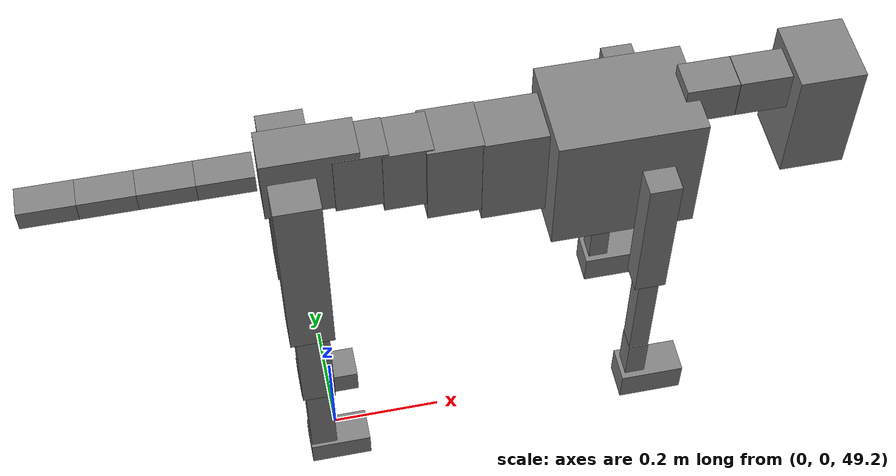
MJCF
<mujoco model="dog">

    <default>
        <joint armature="0.02" stiffness="1" damping="0.2" limited="true"/>
        <geom condim="3" friction="1 0.05 0.05" margin="0.01"/>
        <motor ctrllimited="true" ctrlrange="-1.0 1.0" forcelimited="true" gear="50"/>
    </default>

    <compiler inertiafromgeom="true" angle="radian"/>

    <option timestep="0.016" iterations="50" tolerance="1e-10" solver="Newton" jacobian="dense" cone="pyramidal"/>

    <size nconmax="20000" njmax="60000" nstack="5000000"/>
    <visual>
        <map force="0.1" zfar="30"/>
        <rgba haze="0.15 0.25 0.35 1"/>
        <quality shadowsize="2048"/>
        <global offwidth="800" offheight="800"/>
    </visual>

    <asset>
        <texture type="skybox" builtin="gradient" rgb1="0.3 0.5 0.7" rgb2="0 0 0" width="512" height="512"/>
        <texture name="texplane" type="2d" builtin="checker" rgb1=".2 .3 .4" rgb2=".1 0.15 0.2" width="512" height="512"
                 mark="cross" markrgb=".8 .8 .8"/>
        <texture name="texgeom" type="cube" builtin="flat" mark="cross" width="127" height="1278" rgb1="0.8 0.6 0.4"
                 rgb2="0.8 0.6 0.4" markrgb="1 1 1" random="0.01"/>

        <material name="matplane" reflectance="0.3" texture="texplane" texrepeat="1 1" texuniform="true"/>
        <material name="matgeom" texture="texgeom" texuniform="true" rgba="0.8 0.6 .4 1"/>
    </asset>

    <worldbody>
        <geom name="floor" pos="0 0 0" size="0 0 .25" type="plane" material="matplane" condim="3"/>

        <light directional="false" diffuse=".2 .2 .2" specular="0 0 0" pos="0 0 5" dir="0 0 -1" castshadow="false"/>
        <light mode="targetbodycom" target="torso" directional="false" diffuse=".8 .8 .8" specular="0.3 0.3 0.3"
               pos="0 0 4.0" dir="0 0 -1"/>

        <body name="root" pos="0 0 50">
            <freejoint name="root_1"/>
            <geom type="box" pos="0 0 -0.02" size="0.0774  0.0358  0.063" density="2030"/>

            <body name="spine1" pos="0.054 0 0">
                <joint name="spine1_y" axis="0 1 0" range="0 0.7" limited="true"/>
                <geom type="box" pos="0.02375 0 -0.03" size="0.04375  0.0375  0.05985" density="2030"/>

                <body name="spine2" pos="0.0612 0 0">
                    <joint name="spine2_y" axis="0 1 0" range="-0.15 0.15" limited="true"/>
                    <geom type="box" pos="0.03555  0  -0.04" size="0.04055  0.039  0.06615" density="2030"/>

                    <body name="spine3" pos="0.0730 0 0">
                        <joint name="spine3_y" axis="0 1 0" range="-0.15 0.15" limited="true"/>
                        <geom type="box" pos="0.03555  0  -0.057" size="0.04555  0.0445  0.081" density="2030"/>

                        <body name="spine4" pos="0.0780 0 0">
                            <joint name="spine4_y" axis="0 1 0" range="-0.15 0.15" limited="true"/>
                            <geom type="box" pos="0.05265  0  -0.07" size="0.05265  0.045  0.09135" density="2030"/>

                            <body name="torso" pos="0.1082 0 0">
                                <joint name="torso_y" axis="0 1 0" range="-0.15 0.15" limited="true"/>
                                <geom type="box" pos="0.11925  0  -0.085" size="0.11925  0.085  0.11745"
                                      density="2030"/>

                                <body name="neck1" pos="0.2160  0   0.0180">
                                    <joint name="neck1_y" axis="0 1 0" range="-1.2  -1" limited="true"/>
                                    <geom type="box" pos="0.0423  0  0" size="0.0423  0.03  0.036" density="2325"/>

                                    <body name="neck2" pos="0.0853  0  0">
                                        <joint name="neck2_y" axis="0 1 0" range="0.1  0" limited="true"/>
                                        <geom type="box" pos="0.0423  0  0" size="0.0423  0.03  0.036" density="2325"/>

                                        <body name="head" pos="0.0853  0  0">
                                            <joint name="head_y" axis="0 1 0" range="-0.3  -0.2" limited="true"/>
                                            <geom type="box" pos="0.0531  0  -0.055" size="0.0531  0.06  0.1044"
                                                  density="4030"/>

                                        </body>
                                    </body>
                                </body>

                                <body name="front_shoulder" pos="0.156  0   -0.0480">
                                    <joint name="front_shoulder_y" axis="0 1 0" range="-1 1.5" limited="true"/>
                                    <geom type="box" pos="0 0.13 -0.1036" size="0.0260  0.0222  0.1303" density="1158"/>
                                    <geom type="box" pos="0 -0.13 -0.1036" size="0.0260  0.0222  0.1303"
                                          density="1158"/>

                                    <body name="front_elbow" pos="0  0  -0.2072">
                                        <joint name="front_elbow_y" axis="0 1 0" range="-2 0" limited="true"/>
                                        <geom type="box" pos="0 0.13 -0.1138" size="0.0170  0.0174  0.1138"
                                              density="1081"/>
                                        <geom type="box" pos="0 -0.13 -0.1138" size="0.0170  0.0174  0.1138"
                                              density="1081"/>

                                        <body name="front_wrist" pos="0  0  -0.2275">
                                            <joint name="front_wrist_y" axis="0 1 0" range="-0.2 0" limited="true"/>
                                            <geom type="box" pos="0 0.13 -0.0426" size="0.0173  0.0192  0.0557"
                                                  density="1664"/>
                                            <geom type="box" pos="0 -0.13 -0.0426" size="0.0173  0.0192  0.0557"
                                                  density="1664"/>

                                            <body name="front_finger_end" pos="0  0  -0.0851">
                                                <joint name="front_finger_y" axis="0 1 0" range="-0.4 1"
                                                       limited="true"/>
                                                <geom type="box" pos="0.0301  0.13  -0.0142"
                                                      size="0.0551  0.0301  0.0292" density="1515"/>
                                                <geom type="box" pos="0.0301  -0.13  -0.0142"
                                                      size="0.0551  0.0301  0.0292" density="1515"/>

                                            </body>

                                        </body>
                                    </body>
                                </body>

                            </body>
                        </body>
                    </body>
                </body>
            </body>

            <body name="back_hip" pos="-0.03 0 -0.018">
                <joint name="back_hip_y" axis="0 1 0" range="-1.5 0.3" limited="true"/>
                <geom type="box" pos="0 0.07 -0.1601" size="0.0379  0.0297  0.1829" density="1154"/>
                <geom type="box" pos="0 -0.07 -0.1601" size="0.0379  0.0297  0.1829" density="1154"/>

                <body name="back_knee" pos="0  0  -0.3201">
                    <joint name="back_knee_y" axis="0 1 0" range="0 2.8" limited="true"/>
                    <geom type="box" pos="0 0.07 -0.0938" size="0.0288  0.0284  0.1094" density="1227"/>
                    <geom type="box" pos="0 -0.07 -0.0938" size="0.0288  0.0284  0.1094" density="1227"/>

                    <body name="back_ankle" pos="0  0  -0.1876">
                        <joint name="back_ankle_y" axis="0 1 0" range="-2.2 0" limited="true"/>
                        <geom type="box" pos="0 0.07 -0.1001" size="0.0233  0.0233  0.1113" density="1284"/>
                        <geom type="box" pos="0 -0.07 -0.1001" size="0.0233  0.0233  0.1113" density="1284"/>

                        <body name="back_toe_end" pos="0  0  -0.2002">
                            <joint name="back_toe_y" axis="0 1 0" range="-0.4 1" limited="true"/>
                            <geom type="box" pos="0.0297  0.07  -0.0105" size="0.0545  0.0297  0.0255" density="1515"/>
                            <geom type="box" pos="0.0297  -0.07  -0.0105" size="0.0545  0.0297  0.0255" density="1515"/>

                        </body>
                    </body>
                </body>
            </body>

            <body name="tail1" pos="-0.074 0 -0.006">
                <joint name="tail1_y" axis="0 1 0" range="-0.2 0.2" limited="true"/>
                <geom type="box" pos="-0.0536  0  0" size="0.045  0.025  0.0175" density="1587"/>

                <body name="tail2" pos="-0.09 0 0">
                    <joint name="tail2_y" axis="0 1 0" range="-0.2 0.2" limited="true"/>
                    <geom type="box" pos="-0.0536  0  0" size="0.045  0.025  0.0175" density="1587"/>

                    <body name="tail3" pos="-0.09 0 0">
                        <joint name="tail3_y" axis="0 1 0" range="-0.2 0.2" limited="true"/>
                        <geom type="box" pos="-0.0536  0  0" size="0.045  0.025  0.0175" density="1587"/>

                        <body name="tail4" pos="-0.09 0 0">
                            <joint name="tail4_y" axis="0 1 0" range="-0.2 0.2" limited="true"/>
                            <geom type="box" pos="-0.0536  0  0" size="0.045  0.025  0.0175" density="1587"/>

                        </body>
                    </body>
                </body>
            </body>
        </body>
    </worldbody>

    <actuator>
        <motor joint="spine1_y" forcerange="-150 150     "/>
        <motor joint="spine2_y" forcerange="-150 150     "/>
        <motor joint="spine3_y" forcerange="-150 150     "/>
        <motor joint="spine4_y" forcerange="-150 150     "/>
        <motor joint="torso_y" forcerange="-150 150     "/>
        <motor joint="neck1_y" forcerange="-100 100       "/>
        <motor joint="neck2_y" forcerange="-100 100       "/>
        <motor joint="head_y" forcerange="-150 150       "/>
        <motor joint="front_shoulder_y" forcerange="-131.50 116.57"/>
        <motor joint="front_elbow_y" forcerange="-112.72 113.82"/>
        <motor joint="front_wrist_y" forcerange="-95.55 58.13"/>
        <motor joint="front_finger_y" forcerange="-90.16 30.15"/>
        <motor joint="back_hip_y" forcerange="-217.80 378.21"/>
        <motor joint="back_knee_y" forcerange="-372.46 240.88"/>
        <motor joint="back_angle_y" forcerange="-63.03 209.23"/>
        <motor joint="back_toe_y" forcerange="-31.33 126.37"/>
        <motor joint="tail1_y" forcerange="-50 50     "/>
        <motor joint="tail2_y" forcerange="-50 50     "/>
        <motor joint="tail3_y" forcerange="-50 50     "/>
        <motor joint="tail4_y" forcerange="-50 50     "/>
    </actuator>
</mujoco>
